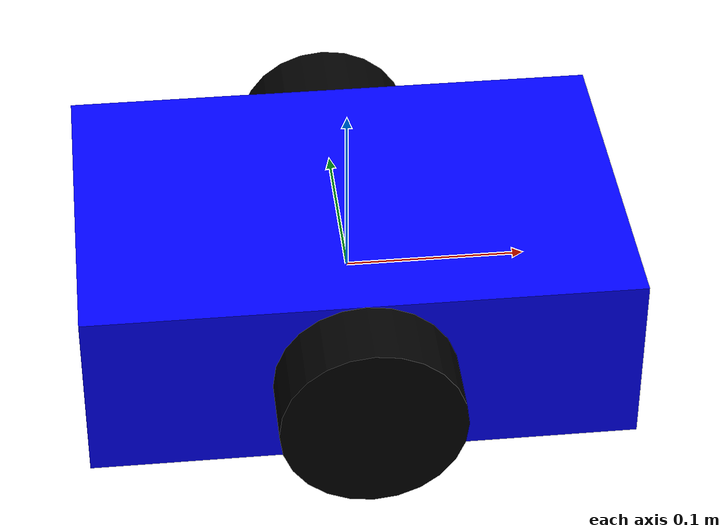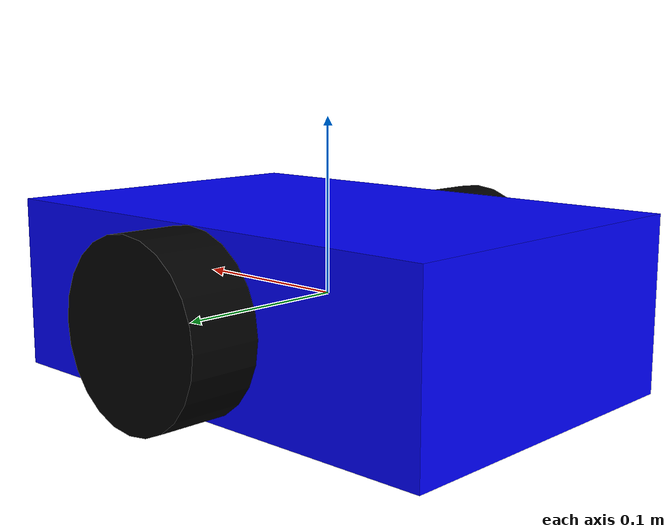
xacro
<?xml version="1.0"?>
<robot name="my_robot" xmlns:xacro="http://www.ros.org/wiki/xacro">

  <!-- Base link -->
  <link name="base_link">
    <visual>
      <geometry>
        <box size="0.3 0.2 0.1"/>
      </geometry>
      <material name="blue">
        <color rgba="0 0 1 1"/>
      </material>
    </visual>
    <collision>
      <geometry>
        <box size="0.3 0.2 0.1"/>
      </geometry>
    </collision>
    <inertial>
      <mass value="1.0"/>
      <inertia ixx="0.01" iyy="0.01" izz="0.01" ixy="0" ixz="0" iyz="0"/>
    </inertial>
  </link>

  <!-- Left wheel -->
  <link name="left_wheel">
    <visual>
      <geometry>
        <cylinder radius="0.05" length="0.04"/>
      </geometry>
      <material name="black">
        <color rgba="0 0 0 1"/>
      </material>
    </visual>
    <collision>
      <geometry>
        <cylinder radius="0.05" length="0.04"/>
      </geometry>
    </collision>
    <inertial>
      <mass value="0.1"/>
      <inertia ixx="0.001" iyy="0.001" izz="0.001" ixy="0" ixz="0" iyz="0"/>
    </inertial>
  </link>

  <joint name="left_wheel_joint" type="continuous">
    <parent link="base_link"/>
    <child link="left_wheel"/>
    <origin xyz="0.0 0.12 0" rpy="-1.5707 0 0"/>
    <axis xyz="0 0 1"/>
  </joint>

  <!-- Right wheel -->
  <link name="right_wheel">
    <visual>
      <geometry>
        <cylinder radius="0.05" length="0.04"/>
      </geometry>
      <material name="black">
        <color rgba="0 0 0 1"/>
      </material>
    </visual>
    <collision>
      <geometry>
        <cylinder radius="0.05" length="0.04"/>
      </geometry>
    </collision>
    <inertial>
      <mass value="0.1"/>
      <inertia ixx="0.001" iyy="0.001" izz="0.001" ixy="0" ixz="0" iyz="0"/>
    </inertial>
  </link>

  <joint name="right_wheel_joint" type="continuous">
    <parent link="base_link"/>
    <child link="right_wheel"/>
    <origin xyz="0.0 -0.12 0" rpy="-1.5707 0 0"/>
    <axis xyz="0 0 1"/>
  </joint>

  <gazebo>
    <plugin filename="gz-sim-diff-drive-system"
            name="gz::sim::systems::DiffDrive">
      <left_joint>left_wheel_joint</left_joint>
      <right_joint>right_wheel_joint</right_joint>
      <wheel_separation>0.24</wheel_separation>
      <wheel_radius>0.05</wheel_radius>
      <topic>/cmd_vel</topic>
    </plugin>
  </gazebo>

</robot>
